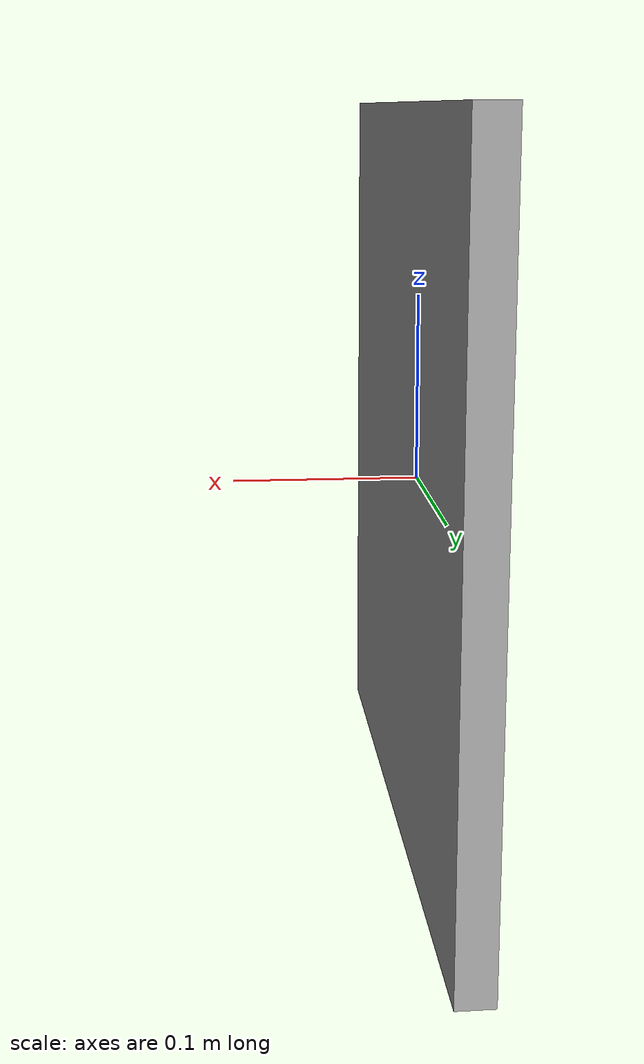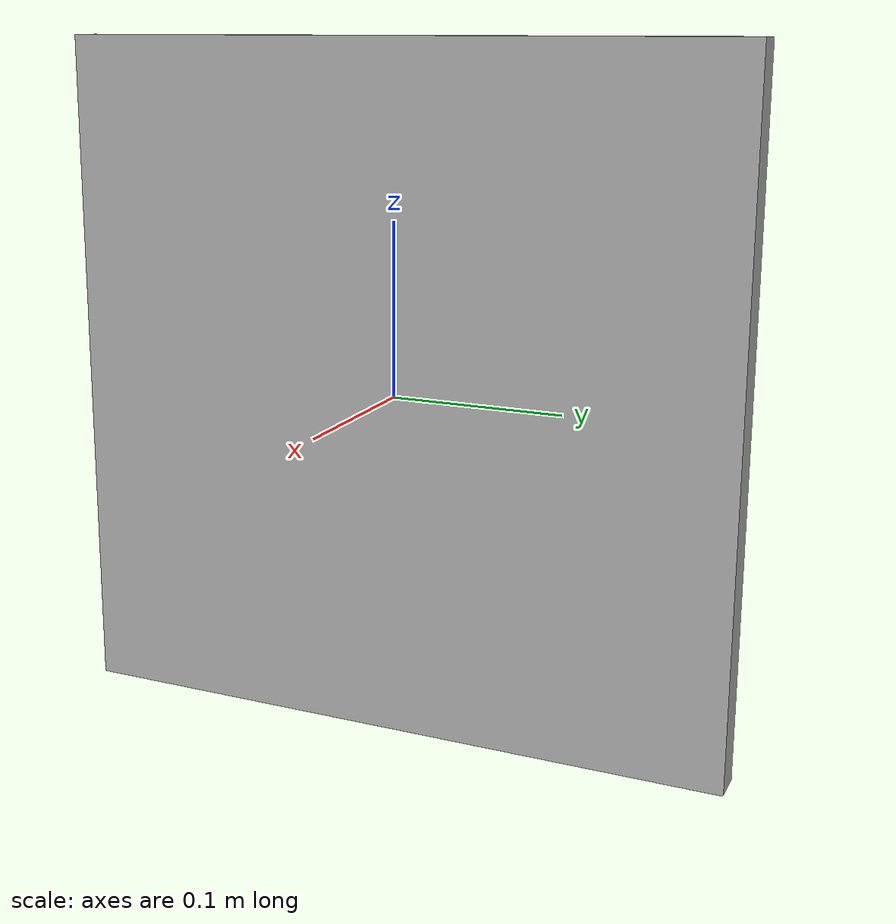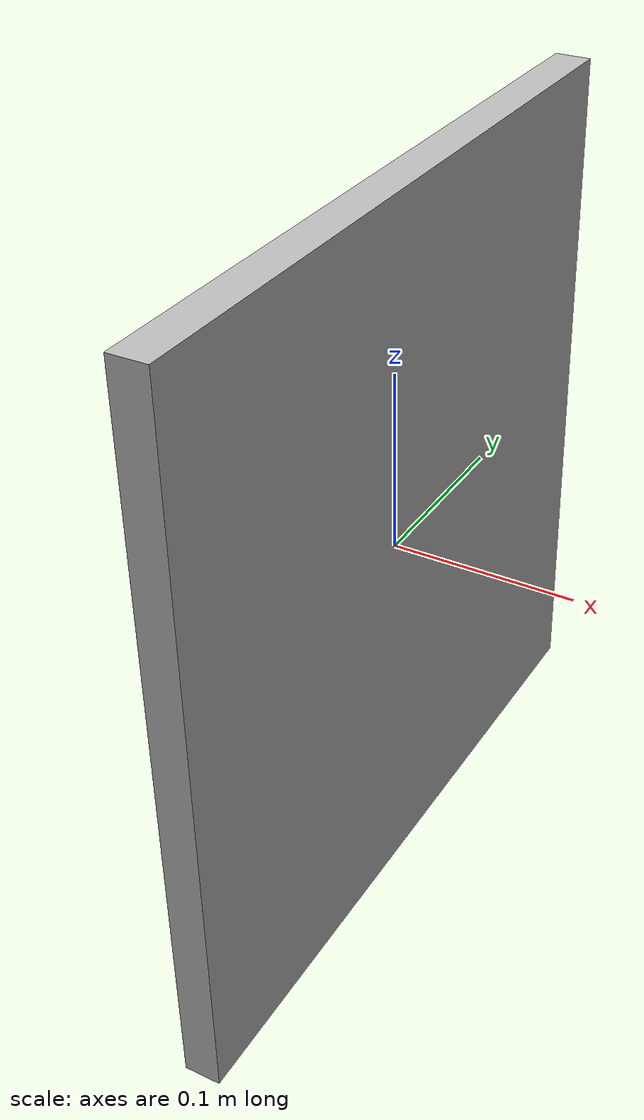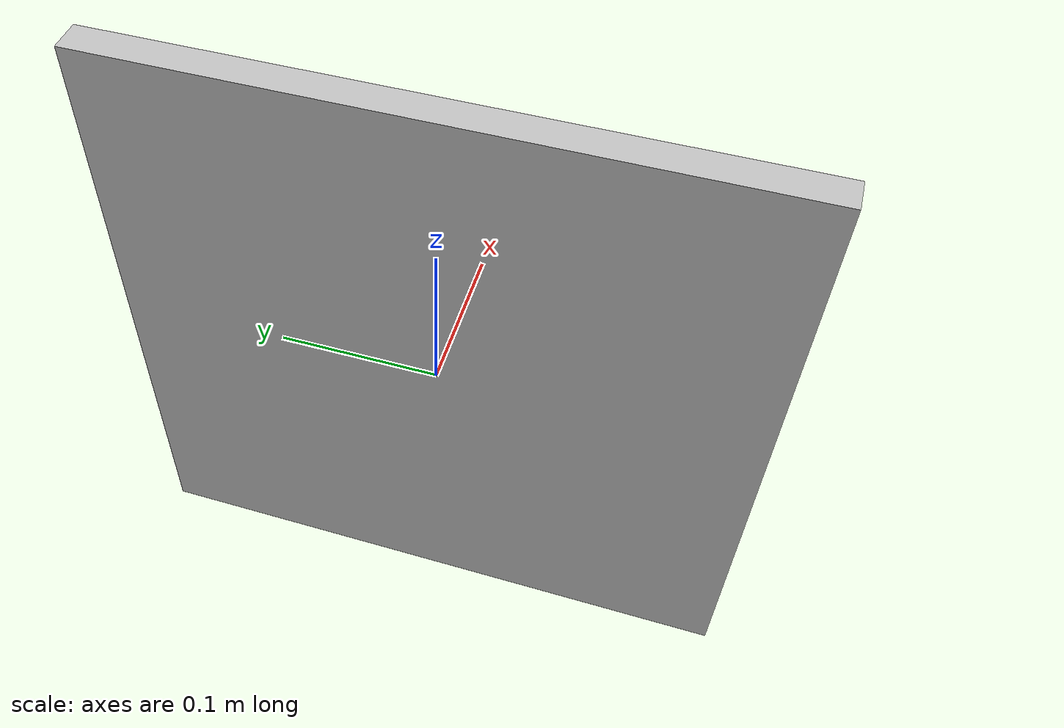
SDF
<?xml version="1.0" ?>
<sdf version="1.4">
  <model name="marker60_8cm">
    <static>1</static>
    <link name="marker">
      <inertial>
        <mass>0.1</mass>
        <inertia>
          <ixx>0.000000</ixx>
          <ixy>0.000000</ixy>
          <ixz>0.000000</ixz>
          <iyy>0.000000</iyy>
          <iyz>0.000000</iyz>
          <izz>0.000000</izz>
        </inertia>
      </inertial>
      <visual name="visual">
        <geometry>
          <box>
            <size>0.02 0.4 0.4</size>
            <!-- SIZE OF THE MARKER + MARGIN -->
          </box>
        </geometry>
        <material>
          <script>
	    <uri>model://marker50_8cm/material/scripts</uri>
	    <uri>model://marker50_8cm/material/textures</uri>
            <name>Aruco/marker50_8cm</name>
          </script>
        </material>
      </visual>
      <collision name="collision">
        <geometry>
          <box>
            <size>0.02 0.4 0.4</size>
            <!-- SIZE OF THE MARKER + MARGIN -->
          </box>
        </geometry>
        <surface>
          <bounce />
          <friction>
            <ode />
          </friction>
          <contact>
            <ode />
          </contact>
        </surface>
      </collision>
      <self_collide>1</self_collide>
      <kinematic>0</kinematic>
      <gravity>1</gravity>
    </link>
  </model>
</sdf>
